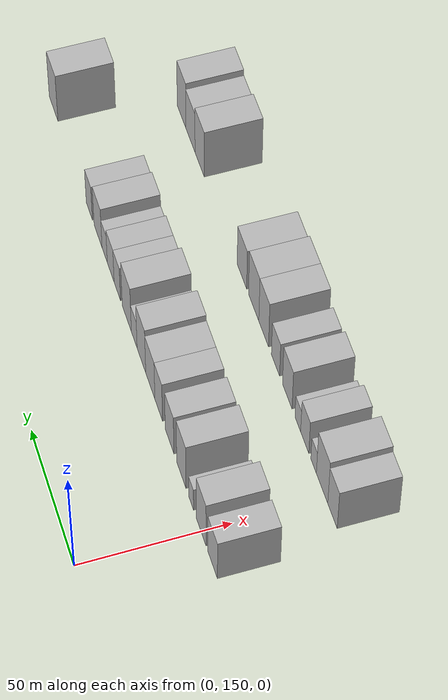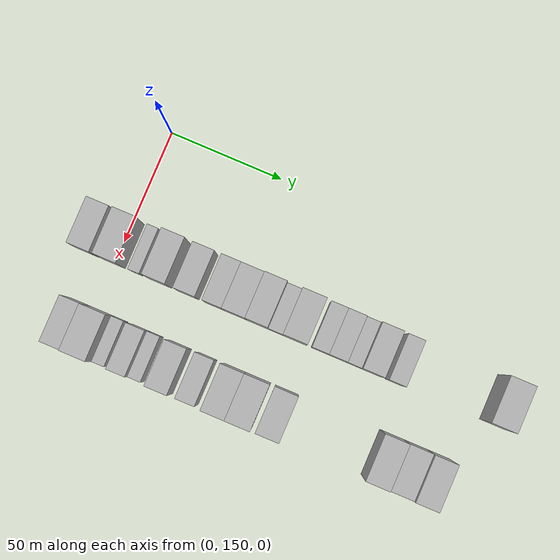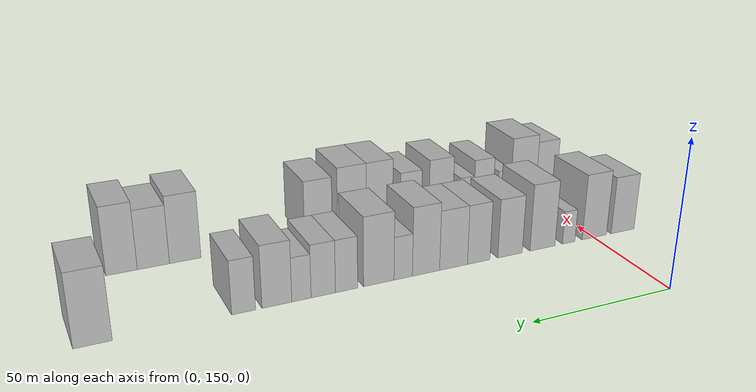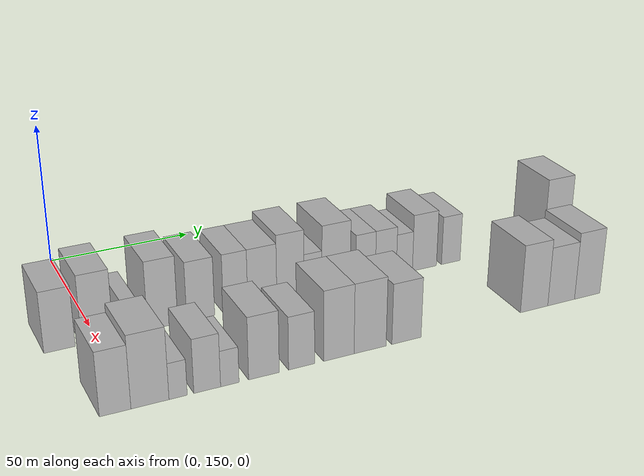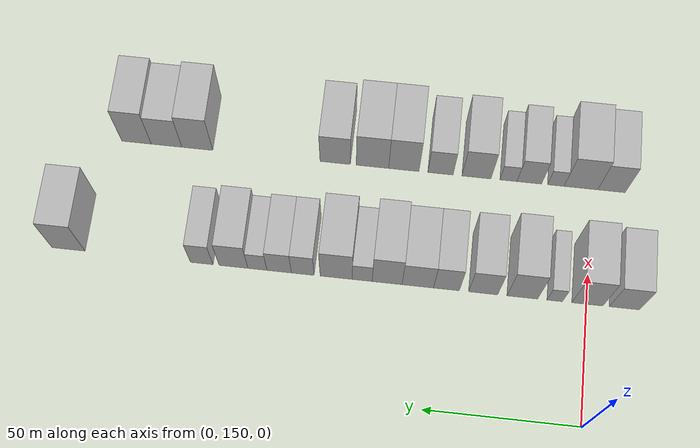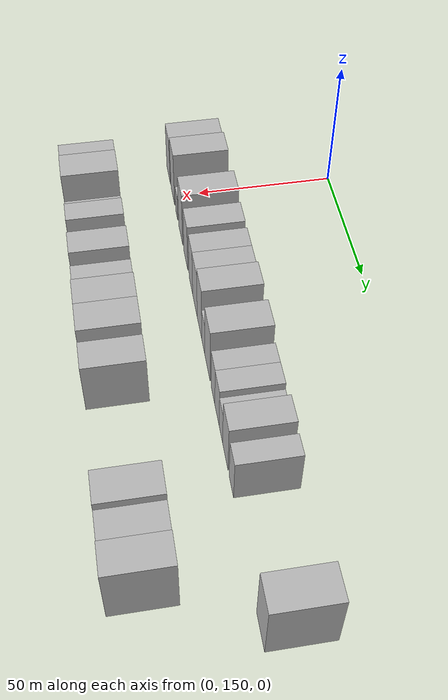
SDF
<sdf version="1.6">
 <world name="default">
  <model name="building_44">
   <static>1</static>
   <pose>50.0000 137.8530 0 0.000000 0.000000 0.000000</pose>
   <link name="link">
    <pose>0 0 10.50 0 0 0</pose>
    <collision name="collision"><geometry><box><size>20.0000 9.7760 21.0000</size></box></geometry></collision>
    <visual name="visual">
     <cast_shadows>0</cast_shadows>
     <geometry><box><size>20.0000 9.7760 21.0000</size></box></geometry>
     <material>
      <script>
       <uri>model://HANNAS_wall/materials/scripts</uri>
       <uri>model://HANNAS_wall/materials/textures</uri>
       <name>vrc/HANNAS_wall</name>
      </script>
     </material>
    </visual>
   </link>
  </model>
  <model name="building_45">
   <static>1</static>
   <pose>50.0000 149.7841 0 0.000000 0.000000 0.000000</pose>
   <link name="link">
    <pose>0 0 12.00 0 0 0</pose>
    <collision name="collision"><geometry><box><size>20.0000 10.0864 24.0000</size></box></geometry></collision>
    <visual name="visual">
     <cast_shadows>0</cast_shadows>
     <geometry><box><size>20.0000 10.0864 24.0000</size></box></geometry>
     <material>
      <script>
       <uri>model://HANNAS_wall/materials/scripts</uri>
       <uri>model://HANNAS_wall/materials/textures</uri>
       <name>vrc/HANNAS_wall</name>
      </script>
     </material>
    </visual>
   </link>
  </model>
  <model name="building_46">
   <static>1</static>
   <pose>50.0000 160.3457 0 0.000000 0.000000 0.000000</pose>
   <link name="link">
    <pose>0 0 6.00 0 0 0</pose>
    <collision name="collision"><geometry><box><size>20.0000 5.0367 12.0000</size></box></geometry></collision>
    <visual name="visual">
     <cast_shadows>0</cast_shadows>
     <geometry><box><size>20.0000 5.0367 12.0000</size></box></geometry>
     <material>
      <script>
       <uri>model://HANNAS_wall/materials/scripts</uri>
       <uri>model://HANNAS_wall/materials/textures</uri>
       <name>vrc/HANNAS_wall</name>
      </script>
     </material>
    </visual>
   </link>
  </model>
  <model name="building_47">
   <static>1</static>
   <pose>50.0000 170.8493 0 0.000000 0.000000 0.000000</pose>
   <link name="link">
    <pose>0 0 12.00 0 0 0</pose>
    <collision name="collision"><geometry><box><size>20.0000 9.9705 24.0000</size></box></geometry></collision>
    <visual name="visual">
     <cast_shadows>0</cast_shadows>
     <geometry><box><size>20.0000 9.9705 24.0000</size></box></geometry>
     <material>
      <script>
       <uri>model://HANNAS_wall/materials/scripts</uri>
       <uri>model://HANNAS_wall/materials/textures</uri>
       <name>vrc/HANNAS_wall</name>
      </script>
     </material>
    </visual>
   </link>
  </model>
  <model name="building_48">
   <static>1</static>
   <pose>50.0000 183.5545 0 0.000000 0.000000 0.000000</pose>
   <link name="link">
    <pose>0 0 10.50 0 0 0</pose>
    <collision name="collision"><geometry><box><size>20.0000 9.4399 21.0000</size></box></geometry></collision>
    <visual name="visual">
     <cast_shadows>0</cast_shadows>
     <geometry><box><size>20.0000 9.4399 21.0000</size></box></geometry>
     <material>
      <script>
       <uri>model://HANNAS_wall/materials/scripts</uri>
       <uri>model://HANNAS_wall/materials/textures</uri>
       <name>vrc/HANNAS_wall</name>
      </script>
     </material>
    </visual>
   </link>
  </model>
  <model name="building_49">
   <static>1</static>
   <pose>50.0000 195.4956 0 0.000000 0.000000 0.000000</pose>
   <link name="link">
    <pose>0 0 10.50 0 0 0</pose>
    <collision name="collision"><geometry><box><size>20.0000 8.4423 21.0000</size></box></geometry></collision>
    <visual name="visual">
     <cast_shadows>0</cast_shadows>
     <geometry><box><size>20.0000 8.4423 21.0000</size></box></geometry>
     <material>
      <script>
       <uri>model://HANNAS_wall/materials/scripts</uri>
       <uri>model://HANNAS_wall/materials/textures</uri>
       <name>vrc/HANNAS_wall</name>
      </script>
     </material>
    </visual>
   </link>
  </model>
  <model name="building_50">
   <static>1</static>
   <pose>50.0000 204.8326 0 0.000000 0.000000 0.000000</pose>
   <link name="link">
    <pose>0 0 10.50 0 0 0</pose>
    <collision name="collision"><geometry><box><size>20.0000 10.2317 21.0000</size></box></geometry></collision>
    <visual name="visual">
     <cast_shadows>0</cast_shadows>
     <geometry><box><size>20.0000 10.2317 21.0000</size></box></geometry>
     <material>
      <script>
       <uri>model://HANNAS_wall/materials/scripts</uri>
       <uri>model://HANNAS_wall/materials/textures</uri>
       <name>vrc/HANNAS_wall</name>
      </script>
     </material>
    </visual>
   </link>
  </model>
  <model name="building_51">
   <static>1</static>
   <pose>50.0000 214.8305 0 0.000000 0.000000 0.000000</pose>
   <link name="link">
    <pose>0 0 12.00 0 0 0</pose>
    <collision name="collision"><geometry><box><size>20.0000 9.7640 24.0000</size></box></geometry></collision>
    <visual name="visual">
     <cast_shadows>0</cast_shadows>
     <geometry><box><size>20.0000 9.7640 24.0000</size></box></geometry>
     <material>
      <script>
       <uri>model://HANNAS_wall/materials/scripts</uri>
       <uri>model://HANNAS_wall/materials/textures</uri>
       <name>vrc/HANNAS_wall</name>
      </script>
     </material>
    </visual>
   </link>
  </model>
  <model name="building_52">
   <static>1</static>
   <pose>50.0000 222.9676 0 0.000000 0.000000 0.000000</pose>
   <link name="link">
    <pose>0 0 7.50 0 0 0</pose>
    <collision name="collision"><geometry><box><size>20.0000 6.5101 15.0000</size></box></geometry></collision>
    <visual name="visual">
     <cast_shadows>0</cast_shadows>
     <geometry><box><size>20.0000 6.5101 15.0000</size></box></geometry>
     <material>
      <script>
       <uri>model://HANNAS_wall/materials/scripts</uri>
       <uri>model://HANNAS_wall/materials/textures</uri>
       <name>vrc/HANNAS_wall</name>
      </script>
     </material>
    </visual>
   </link>
  </model>
  <model name="building_53">
   <static>1</static>
   <pose>50.0000 231.4783 0 0.000000 0.000000 0.000000</pose>
   <link name="link">
    <pose>0 0 12.00 0 0 0</pose>
    <collision name="collision"><geometry><box><size>20.0000 10.5115 24.0000</size></box></geometry></collision>
    <visual name="visual">
     <cast_shadows>0</cast_shadows>
     <geometry><box><size>20.0000 10.5115 24.0000</size></box></geometry>
     <material>
      <script>
       <uri>model://HANNAS_wall/materials/scripts</uri>
       <uri>model://HANNAS_wall/materials/textures</uri>
       <name>vrc/HANNAS_wall</name>
      </script>
     </material>
    </visual>
   </link>
  </model>
  <model name="building_54">
   <static>1</static>
   <pose>50.0000 242.4582 0 0.000000 0.000000 0.000000</pose>
   <link name="link">
    <pose>0 0 9.00 0 0 0</pose>
    <collision name="collision"><geometry><box><size>20.0000 7.4483 18.0000</size></box></geometry></collision>
    <visual name="visual">
     <cast_shadows>0</cast_shadows>
     <geometry><box><size>20.0000 7.4483 18.0000</size></box></geometry>
     <material>
      <script>
       <uri>model://HANNAS_wall/materials/scripts</uri>
       <uri>model://HANNAS_wall/materials/textures</uri>
       <name>vrc/HANNAS_wall</name>
      </script>
     </material>
    </visual>
   </link>
  </model>
  <model name="building_55">
   <static>1</static>
   <pose>50.0000 250.1970 0 0.000000 0.000000 0.000000</pose>
   <link name="link">
    <pose>0 0 9.00 0 0 0</pose>
    <collision name="collision"><geometry><box><size>20.0000 8.0293 18.0000</size></box></geometry></collision>
    <visual name="visual">
     <cast_shadows>0</cast_shadows>
     <geometry><box><size>20.0000 8.0293 18.0000</size></box></geometry>
     <material>
      <script>
       <uri>model://HANNAS_wall/materials/scripts</uri>
       <uri>model://HANNAS_wall/materials/textures</uri>
       <name>vrc/HANNAS_wall</name>
      </script>
     </material>
    </visual>
   </link>
  </model>
  <model name="building_56">
   <static>1</static>
   <pose>50.0000 257.3411 0 0.000000 0.000000 0.000000</pose>
   <link name="link">
    <pose>0 0 7.50 0 0 0</pose>
    <collision name="collision"><geometry><box><size>20.0000 6.2587 15.0000</size></box></geometry></collision>
    <visual name="visual">
     <cast_shadows>0</cast_shadows>
     <geometry><box><size>20.0000 6.2587 15.0000</size></box></geometry>
     <material>
      <script>
       <uri>model://HANNAS_wall/materials/scripts</uri>
       <uri>model://HANNAS_wall/materials/textures</uri>
       <name>vrc/HANNAS_wall</name>
      </script>
     </material>
    </visual>
   </link>
  </model>
  <model name="building_57">
   <static>1</static>
   <pose>50.0000 265.2137 0 0.000000 0.000000 0.000000</pose>
   <link name="link">
    <pose>0 0 10.50 0 0 0</pose>
    <collision name="collision"><geometry><box><size>20.0000 9.4865 21.0000</size></box></geometry></collision>
    <visual name="visual">
     <cast_shadows>0</cast_shadows>
     <geometry><box><size>20.0000 9.4865 21.0000</size></box></geometry>
     <material>
      <script>
       <uri>model://HANNAS_wall/materials/scripts</uri>
       <uri>model://HANNAS_wall/materials/textures</uri>
       <name>vrc/HANNAS_wall</name>
      </script>
     </material>
    </visual>
   </link>
  </model>
  <model name="building_58">
   <static>1</static>
   <pose>50.0000 275.6869 0 0.000000 0.000000 0.000000</pose>
   <link name="link">
    <pose>0 0 9.00 0 0 0</pose>
    <collision name="collision"><geometry><box><size>20.0000 7.4600 18.0000</size></box></geometry></collision>
    <visual name="visual">
     <cast_shadows>0</cast_shadows>
     <geometry><box><size>20.0000 7.4600 18.0000</size></box></geometry>
     <material>
      <script>
       <uri>model://HANNAS_wall/materials/scripts</uri>
       <uri>model://HANNAS_wall/materials/textures</uri>
       <name>vrc/HANNAS_wall</name>
      </script>
     </material>
    </visual>
   </link>
  </model>
  <model name="building_59">
   <static>1</static>
   <pose>50.0000 319.8931 0 0.000000 0.000000 0.000000</pose>
   <link name="link">
    <pose>0 0 12.00 0 0 0</pose>
    <collision name="collision"><geometry><box><size>20.0000 10.9841 24.0000</size></box></geometry></collision>
    <visual name="visual">
     <cast_shadows>0</cast_shadows>
     <geometry><box><size>20.0000 10.9841 24.0000</size></box></geometry>
     <material>
      <script>
       <uri>model://HANNAS_wall/materials/scripts</uri>
       <uri>model://HANNAS_wall/materials/textures</uri>
       <name>vrc/HANNAS_wall</name>
      </script>
     </material>
    </visual>
   </link>
  </model>
  <model name="building_103">
   <static>1</static>
   <pose>90.0000 143.4629 0 0.000000 0.000000 0.000000</pose>
   <link name="link">
    <pose>0 0 10.50 0 0 0</pose>
    <collision name="collision"><geometry><box><size>20.0000 9.1817 21.0000</size></box></geometry></collision>
    <visual name="visual">
     <cast_shadows>0</cast_shadows>
     <geometry><box><size>20.0000 9.1817 21.0000</size></box></geometry>
     <material>
      <script>
       <uri>model://HANNAS_wall/materials/scripts</uri>
       <uri>model://HANNAS_wall/materials/textures</uri>
       <name>vrc/HANNAS_wall</name>
      </script>
     </material>
    </visual>
   </link>
  </model>
  <model name="building_104">
   <static>1</static>
   <pose>90.0000 153.6784 0 0.000000 0.000000 0.000000</pose>
   <link name="link">
    <pose>0 0 12.00 0 0 0</pose>
    <collision name="collision"><geometry><box><size>20.0000 11.2494 24.0000</size></box></geometry></collision>
    <visual name="visual">
     <cast_shadows>0</cast_shadows>
     <geometry><box><size>20.0000 11.2494 24.0000</size></box></geometry>
     <material>
      <script>
       <uri>model://HANNAS_wall/materials/scripts</uri>
       <uri>model://HANNAS_wall/materials/textures</uri>
       <name>vrc/HANNAS_wall</name>
      </script>
     </material>
    </visual>
   </link>
  </model>
  <model name="building_105">
   <static>1</static>
   <pose>90.0000 162.0528 0 0.000000 0.000000 0.000000</pose>
   <link name="link">
    <pose>0 0 6.00 0 0 0</pose>
    <collision name="collision"><geometry><box><size>20.0000 5.4996 12.0000</size></box></geometry></collision>
    <visual name="visual">
     <cast_shadows>0</cast_shadows>
     <geometry><box><size>20.0000 5.4996 12.0000</size></box></geometry>
     <material>
      <script>
       <uri>model://HANNAS_wall/materials/scripts</uri>
       <uri>model://HANNAS_wall/materials/textures</uri>
       <name>vrc/HANNAS_wall</name>
      </script>
     </material>
    </visual>
   </link>
  </model>
  <model name="building_106">
   <static>1</static>
   <pose>90.0000 170.9124 0 0.000000 0.000000 0.000000</pose>
   <link name="link">
    <pose>0 0 9.00 0 0 0</pose>
    <collision name="collision"><geometry><box><size>20.0000 8.2195 18.0000</size></box></geometry></collision>
    <visual name="visual">
     <cast_shadows>0</cast_shadows>
     <geometry><box><size>20.0000 8.2195 18.0000</size></box></geometry>
     <material>
      <script>
       <uri>model://HANNAS_wall/materials/scripts</uri>
       <uri>model://HANNAS_wall/materials/textures</uri>
       <name>vrc/HANNAS_wall</name>
      </script>
     </material>
    </visual>
   </link>
  </model>
  <model name="building_107">
   <static>1</static>
   <pose>90.0000 177.8979 0 0.000000 0.000000 0.000000</pose>
   <link name="link">
    <pose>0 0 6.00 0 0 0</pose>
    <collision name="collision"><geometry><box><size>20.0000 5.7516 12.0000</size></box></geometry></collision>
    <visual name="visual">
     <cast_shadows>0</cast_shadows>
     <geometry><box><size>20.0000 5.7516 12.0000</size></box></geometry>
     <material>
      <script>
       <uri>model://HANNAS_wall/materials/scripts</uri>
       <uri>model://HANNAS_wall/materials/textures</uri>
       <name>vrc/HANNAS_wall</name>
      </script>
     </material>
    </visual>
   </link>
  </model>
  <model name="building_108">
   <static>1</static>
   <pose>90.0000 188.6570 0 0.000000 0.000000 0.000000</pose>
   <link name="link">
    <pose>0 0 10.50 0 0 0</pose>
    <collision name="collision"><geometry><box><size>20.0000 9.7667 21.0000</size></box></geometry></collision>
    <visual name="visual">
     <cast_shadows>0</cast_shadows>
     <geometry><box><size>20.0000 9.7667 21.0000</size></box></geometry>
     <material>
      <script>
       <uri>model://HANNAS_wall/materials/scripts</uri>
       <uri>model://HANNAS_wall/materials/textures</uri>
       <name>vrc/HANNAS_wall</name>
      </script>
     </material>
    </visual>
   </link>
  </model>
  <model name="building_109">
   <static>1</static>
   <pose>90.0000 200.7852 0 0.000000 0.000000 0.000000</pose>
   <link name="link">
    <pose>0 0 9.00 0 0 0</pose>
    <collision name="collision"><geometry><box><size>20.0000 8.4896 18.0000</size></box></geometry></collision>
    <visual name="visual">
     <cast_shadows>0</cast_shadows>
     <geometry><box><size>20.0000 8.4896 18.0000</size></box></geometry>
     <material>
      <script>
       <uri>model://HANNAS_wall/materials/scripts</uri>
       <uri>model://HANNAS_wall/materials/textures</uri>
       <name>vrc/HANNAS_wall</name>
      </script>
     </material>
    </visual>
   </link>
  </model>
  <model name="building_110">
   <static>1</static>
   <pose>90.0000 213.1345 0 0.000000 0.000000 0.000000</pose>
   <link name="link">
    <pose>0 0 12.00 0 0 0</pose>
    <collision name="collision"><geometry><box><size>20.0000 10.2092 24.0000</size></box></geometry></collision>
    <visual name="visual">
     <cast_shadows>0</cast_shadows>
     <geometry><box><size>20.0000 10.2092 24.0000</size></box></geometry>
     <material>
      <script>
       <uri>model://HANNAS_wall/materials/scripts</uri>
       <uri>model://HANNAS_wall/materials/textures</uri>
       <name>vrc/HANNAS_wall</name>
      </script>
     </material>
    </visual>
   </link>
  </model>
  <model name="building_111">
   <static>1</static>
   <pose>90.0000 223.7294 0 0.000000 0.000000 0.000000</pose>
   <link name="link">
    <pose>0 0 12.00 0 0 0</pose>
    <collision name="collision"><geometry><box><size>20.0000 10.9805 24.0000</size></box></geometry></collision>
    <visual name="visual">
     <cast_shadows>0</cast_shadows>
     <geometry><box><size>20.0000 10.9805 24.0000</size></box></geometry>
     <material>
      <script>
       <uri>model://HANNAS_wall/materials/scripts</uri>
       <uri>model://HANNAS_wall/materials/textures</uri>
       <name>vrc/HANNAS_wall</name>
      </script>
     </material>
    </visual>
   </link>
  </model>
  <model name="building_112">
   <static>1</static>
   <pose>90.0000 236.3527 0 0.000000 0.000000 0.000000</pose>
   <link name="link">
    <pose>0 0 10.50 0 0 0</pose>
    <collision name="collision"><geometry><box><size>20.0000 10.2661 21.0000</size></box></geometry></collision>
    <visual name="visual">
     <cast_shadows>0</cast_shadows>
     <geometry><box><size>20.0000 10.2661 21.0000</size></box></geometry>
     <material>
      <script>
       <uri>model://HANNAS_wall/materials/scripts</uri>
       <uri>model://HANNAS_wall/materials/textures</uri>
       <name>vrc/HANNAS_wall</name>
      </script>
     </material>
    </visual>
   </link>
  </model>
  <model name="building_113">
   <static>1</static>
   <pose>90.0000 283.2901 0 0.000000 0.000000 0.000000</pose>
   <link name="link">
    <pose>0 0 12.00 0 0 0</pose>
    <collision name="collision"><geometry><box><size>20.0000 10.5362 24.0000</size></box></geometry></collision>
    <visual name="visual">
     <cast_shadows>0</cast_shadows>
     <geometry><box><size>20.0000 10.5362 24.0000</size></box></geometry>
     <material>
      <script>
       <uri>model://HANNAS_wall/materials/scripts</uri>
       <uri>model://HANNAS_wall/materials/textures</uri>
       <name>vrc/HANNAS_wall</name>
      </script>
     </material>
    </visual>
   </link>
  </model>
  <model name="building_114">
   <static>1</static>
   <pose>90.0000 293.8077 0 0.000000 0.000000 0.000000</pose>
   <link name="link">
    <pose>0 0 10.50 0 0 0</pose>
    <collision name="collision"><geometry><box><size>20.0000 10.4990 21.0000</size></box></geometry></collision>
    <visual name="visual">
     <cast_shadows>0</cast_shadows>
     <geometry><box><size>20.0000 10.4990 21.0000</size></box></geometry>
     <material>
      <script>
       <uri>model://HANNAS_wall/materials/scripts</uri>
       <uri>model://HANNAS_wall/materials/textures</uri>
       <name>vrc/HANNAS_wall</name>
      </script>
     </material>
    </visual>
   </link>
  </model>
  <model name="building_115">
   <static>1</static>
   <pose>90.0000 304.1115 0 0.000000 0.000000 0.000000</pose>
   <link name="link">
    <pose>0 0 12.00 0 0 0</pose>
    <collision name="collision"><geometry><box><size>20.0000 10.1087 24.0000</size></box></geometry></collision>
    <visual name="visual">
     <cast_shadows>0</cast_shadows>
     <geometry><box><size>20.0000 10.1087 24.0000</size></box></geometry>
     <material>
      <script>
       <uri>model://HANNAS_wall/materials/scripts</uri>
       <uri>model://HANNAS_wall/materials/textures</uri>
       <name>vrc/HANNAS_wall</name>
      </script>
     </material>
    </visual>
   </link>
  </model>
 </world>
</sdf>
